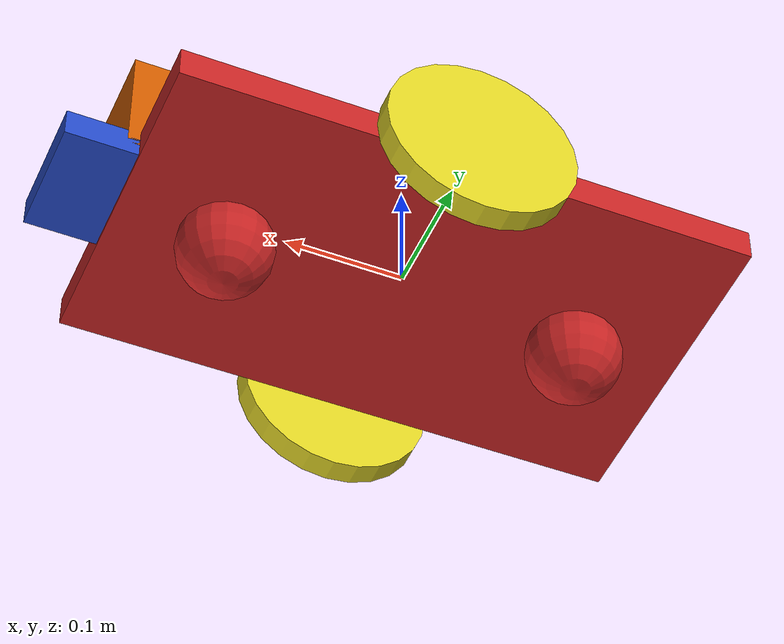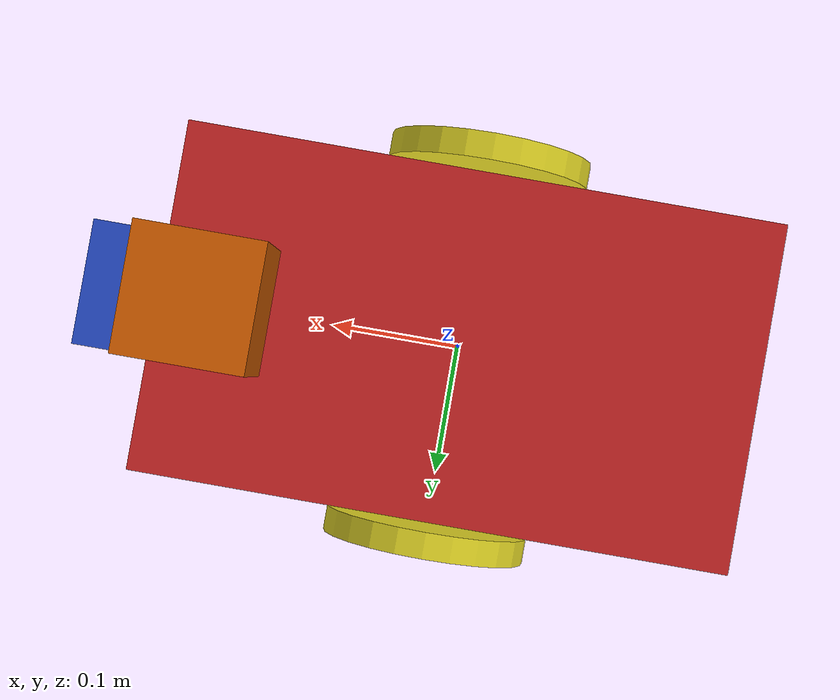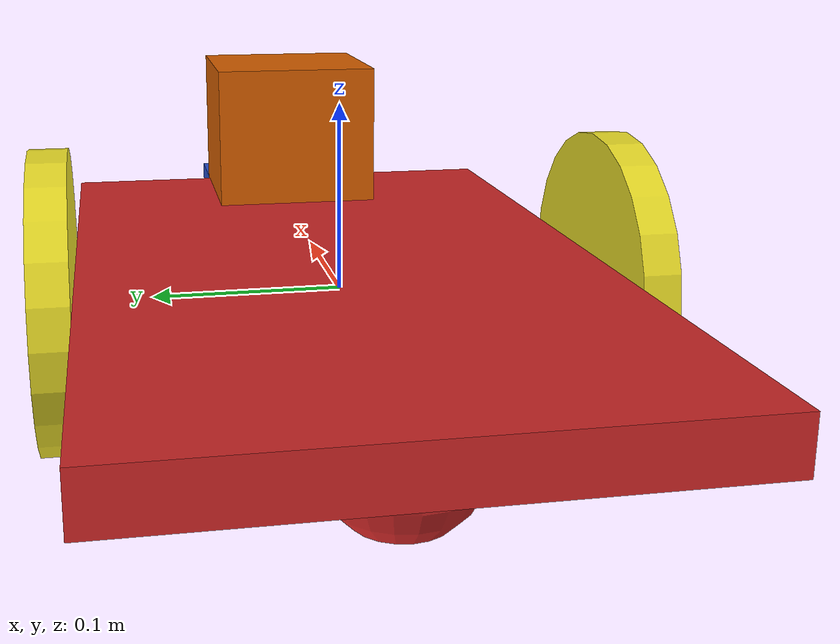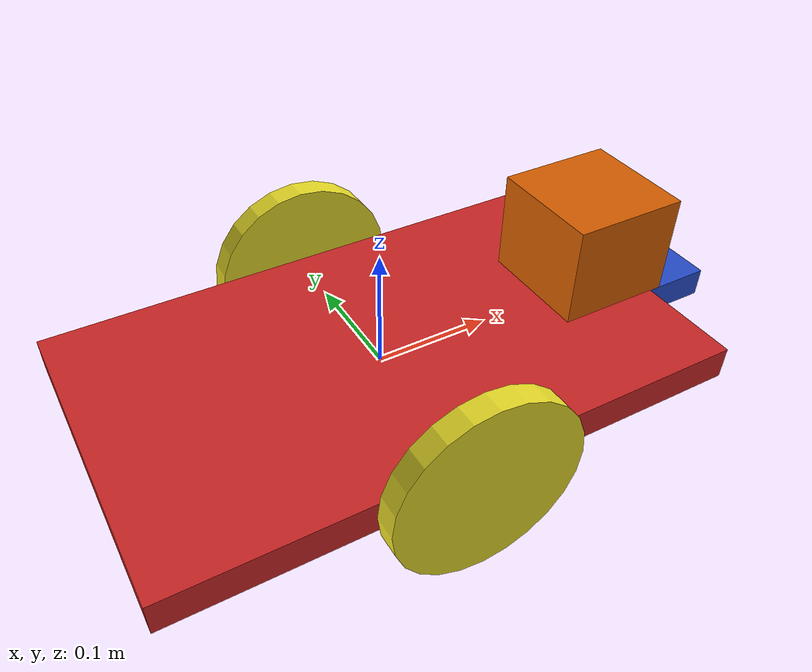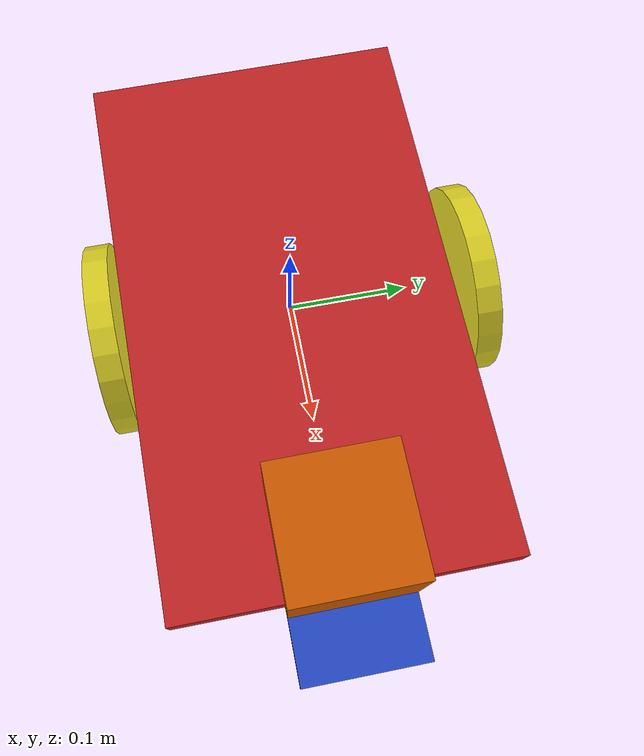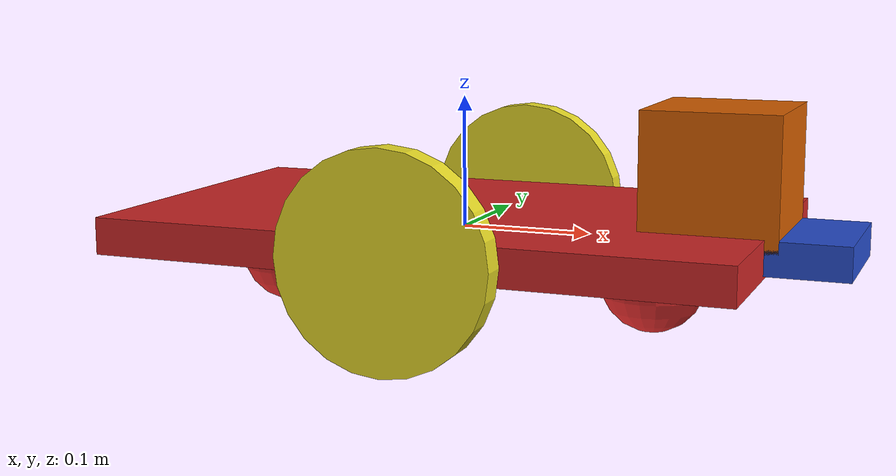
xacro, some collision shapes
<?xml version='1.0'?>

<robot name="my_robot_A" xmlns:xacro="http://www.ros.org/wiki/xacro">
<xacro:include filename="$(find my_robot)/urdf/my_robot.gazebo"/>
  <link name="robot_footprint"></link>

  <gazebo reference="left_wheel">
        <material>Gazebo/Yellow</material>
     </gazebo>
     <gazebo reference="right_wheel">
        <material>Gazebo/Yellow</material>
     </gazebo>
   <gazebo reference="chassis">
        <material>Gazebo/Red</material>
     </gazebo>
   <gazebo reference="camera">
        <material>Gazebo/Blue</material>
    </gazebo>
  roslaunch ball_chaser ball_chaser.launch

  <joint name="robot_footprint_joint" type="fixed">
    <origin xyz="0 0 0" rpy="0 0 0" />
    <parent link="robot_footprint"/>
    <child link="chassis" />
  </joint>

  <link name='chassis'>
    <pose>0 0 0.1 0 0 0</pose>

    <inertial>
      <mass value="15.0"/>
      <origin xyz="0.0 0 0" rpy=" 0 0 0"/>
      <inertia
          ixx="0.1" ixy="0" ixz="0"
          iyy="0.1" iyz="0"
          izz="0.1"
      />
    </inertial>

    <collision name='collision'>
      <origin xyz="0 0 0" rpy=" 0 0 0"/>
      <geometry>
        <box size=".480 .280 .0280"/>
      </geometry>
    </collision>

    <visual name='chassis_visual'>
      <origin xyz="0 0 0" rpy=" 0 0 0"/>
      <geometry>
        <box size=".480 .280 .0280"/>
      </geometry>
    </visual>
    <collision name='back_caster_collision'>
      <origin xyz="-0.15 0 -0.03" rpy=" 0 0 0"/>
      <geometry>
        <sphere radius="0.0499"/>
      </geometry>
    </collision>

    <visual name='back_caster_visual'>
      <origin xyz="-0.15 0 -0.03" rpy=" 0 0 0"/>
      <geometry>
        <sphere radius="0.04"/>
      </geometry>
    </visual>

    <collision name='front_caster_collision'>
      <origin xyz="0.15 0 -0.03" rpy=" 0 0 0"/>
      <geometry>
        <sphere radius="0.0499"/>
      </geometry>
    </collision>

    <visual name='front_caster_visual'>
      <origin xyz="0.15 0 -0.03" rpy=" 0 0 0"/>
      <geometry>
        <sphere radius="0.04"/>
      </geometry>
    </visual>
   </link>

  <link name ="left_wheel">
      <mass value="5"/>
      <origin xyz= "0 0 0" rpy="0 1.5707 1.5707"/>
  <inertial>
      <mass value="15.0"/>
      <origin xyz="0 0 0" rpy=" 0 0 0"/>
      <inertia
          ixx="0.1" ixy="0" ixz="0"
          iyy="0.1" iyz="0"
          izz="0.1"
      />
    </inertial>

  <collision name='left_wheel'>
      <origin xyz= "0 0 0" rpy="0 1.5707 1.5707"/>
      <geometry>
        <cylinder radius="0.08" length ="0.02"/>
      </geometry>
  </collision>

  <visual name='left_wheel'>
       <origin xyz="0 0 0" rpy="0 1.5707 1.5707"/>
        <geometry>
           <cylinder radius="0.08" length ="0.02"/>
        </geometry>
  </visual>
  </link>

  <link name ='right_wheel'>
      <mass value="5"/>
      <origin xyz= "0 0 0" rpy="0 1.5707 1.5707"/>
  <inertial>
      <mass value="15.0"/>
      <origin xyz="0.0 0 0" rpy=" 0 0 0"/>
      <inertia
          ixx="0.1" ixy="0" ixz="0"
          iyy="0.1" iyz="0"
          izz="0.1"
      />
    </inertial>

  <collision name='right_wheel'>
      <origin xyz= "0 0 0" rpy="0 1.5707 1.5707"/>
      <geometry>
        <cylinder radius="0.08" length ="0.02"/>
      </geometry>
  </collision>

  <visual name='right_wheel'>
       <origin xyz="0 0 0" rpy="0 1.5707 1.5707"/>
        <geometry>
           <cylinder radius="0.08" length ="0.02"/>
        </geometry>
  </visual>
  </link>

  <link name="camera">
   <inertial>
      <mass value="0.1"/>
      <origin xyx="0 0 0" rpy="0 0 0"/>
      <box_inertia m="0.1" z="0.05" y="0.05" x="0.05"/>
   <inertia
	ixx="1e-6" ixy="0" ixz="0"
        iyy="1e-6" iyz="0"
	izz="1e-6"/>
   </inertial>

   <collision name='camera'>
       <origin xyz="0.05 0.00 0.001" rpy="0 0 0"/>
       <geometry>
	  <box size="0.1 0.1 0.0250"/>
       </geometry>
   </collision>

   <visual>
       <origin xyz="0.05 0.00 0.001" rpy="0 0 0"/>
       <geometry>
	  <box size="0.1 0.1 0.0250"/>
       </geometry>
   </visual>
  </link>

<link name="hokuyo">

  <inertial>
      <mass value="1e-5"/>
      <origin xyz="0 0 0" rpy="0 0 0"/>
      <inertia
	ixx="1e-6" ixy="0" ixz="0"
        iyy="1e-6" iyz="0"
	izz="1e-6"/>
  </inertial>

  <collision name='geometry_collision'>
      <origin xyz="0.05 0.00 -0.05" rpy="0 0 0"/>
      <geometry>
	 <box size="0.1 0.1 0.1"/>
      </geometry>
  </collision>

  <visual name='geometry_visual'>
      <origin xyz="0.05 0.00 -0.05" rpy="0 0 0"/>
      <geometry>
	<mesh filename="package://my_robot/meshes/hokuyo.dae"/>
      </geometry>
  </visual>
</link>

 <joint type="continuous" name="left_wheel_hinge">
    <origin xyz="0 0.15 0" rpy="0 0 0"/>
    <child link="left_wheel"/>
    <parent link="chassis"/>
    <axis xyz="0 1 0" rpy="0 0 0"/>
    <limit effort="10000" velocity="1000"/>
    <dynamics damping="1.0" friction="1.0"/>
  </joint>

 <joint type="continuous" name="right_wheel_hinge">
    <origin xyz="0 -0.15 0" rpy="0 0 0"/>
    <child link="right_wheel"/>
    <parent link="chassis"/>
    <axis xyz="0 1 0" rpy="0 0 0"/>
    <limit effort="10000" velocity="1000"/>
    <dynamics damping="1.0" friction="1.0"/>
  </joint>

  <joint type="fixed" name="camera_joint">
     <axis xyz="0 1 0" rpy="0 0 0"/>
     <origin xyz="0.2 0 0" ryp="0 0 0"/>
     <parent link ="chassis"/>
     <child link ="camera"/>
  </joint>

  <joint type="fixed" name="hokuyo_joint">
     <axis xyz="0 1 0" rpy="0 0 0 "/>
     <origin xyz="0.15 0 .1" rpy="0 0 0"/>
     <parent link="chassis"/>
     <child link="hokuyo"/>

  </joint>
</robot>
